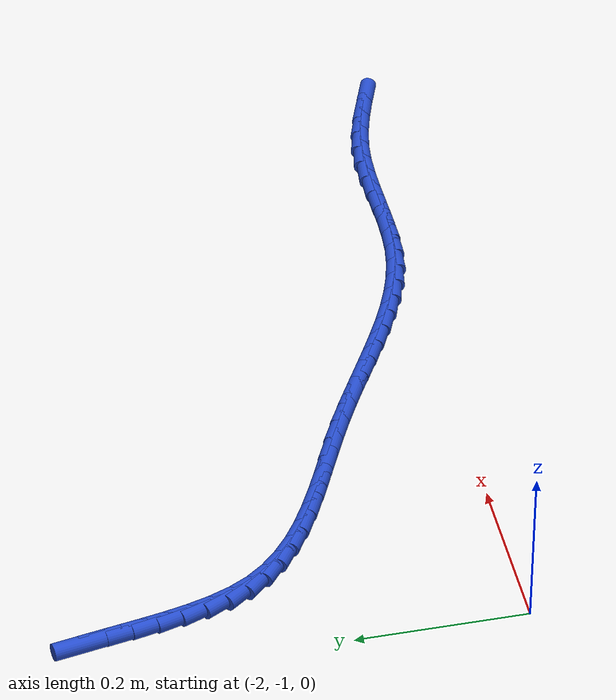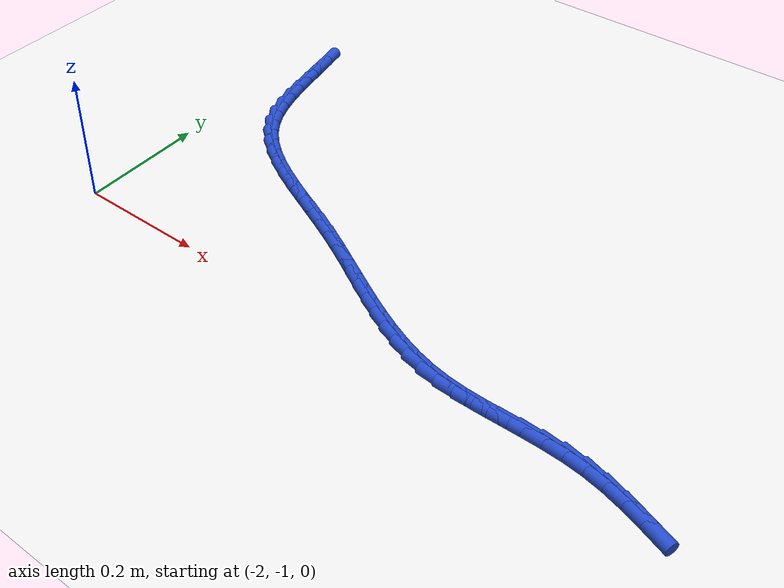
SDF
<sdf version="1.6">
 <world name="default">
  <model name="ground_plane">
   <static>1</static>
   <link name="link">
    <collision name="collision">
     <geometry><plane><normal>0 0 1</normal><size>100 100</size></plane></geometry>
     <surface><friction><ode><mu>100</mu><mu2>50</mu2></ode></friction></surface>
    </collision>
    <visual name="visual">
     <cast_shadows>0</cast_shadows>
     <geometry><plane><normal>0 0 1</normal><size>100 100</size></plane></geometry>
     <material>
      <script><uri>file://media/materials/scripts/gazebo.material</uri><name>Gazebo/WhiteGlow</name></script>
     </material>
    </visual>
   </link>
  </model>
  <model name="line">
   <link name="link_134">
    <pose>-1.9519739276661763 -0.5116068134276865 0.01 0 1.57 -1.393009282813356</pose>
    <collision name="collision">
     <geometry><cylinder><radius>0.01</radius><length>0.08</length></cylinder></geometry>
    </collision>
    <visual name="visual">
     <material>
      <script><name>Gazebo/Blue</name><uri>file://media/materials/scripts/gazebo.material</uri></script>
     </material>
     <geometry><cylinder><radius>0.01</radius><length>0.08</length></cylinder></geometry>
    </visual>
   </link>
   <link name="link_135">
    <pose>-1.9465908189441055 -0.5415655318789523 0.01 0 1.57 -1.39965586402072</pose>
    <collision name="collision">
     <geometry><cylinder><radius>0.01</radius><length>0.08</length></cylinder></geometry>
    </collision>
    <visual name="visual">
     <material>
      <script><name>Gazebo/Blue</name><uri>file://media/materials/scripts/gazebo.material</uri></script>
     </material>
     <geometry><cylinder><radius>0.01</radius><length>0.08</length></cylinder></geometry>
    </visual>
   </link>
   <link name="link_136">
    <pose>-1.9414377471796966 -0.5713811794061978 0.01 0 1.57 -1.3855193956344733</pose>
    <collision name="collision">
     <geometry><cylinder><radius>0.01</radius><length>0.08</length></cylinder></geometry>
    </collision>
    <visual name="visual">
     <material>
      <script><name>Gazebo/Blue</name><uri>file://media/materials/scripts/gazebo.material</uri></script>
     </material>
     <geometry><cylinder><radius>0.01</radius><length>0.08</length></cylinder></geometry>
    </visual>
   </link>
   <link name="link_137">
    <pose>-1.9359438019418214 -0.6006937134726278 0.01 0 1.57 -1.3493273520331157</pose>
    <collision name="collision">
     <geometry><cylinder><radius>0.01</radius><length>0.08</length></cylinder></geometry>
    </collision>
    <visual name="visual">
     <material>
      <script><name>Gazebo/Blue</name><uri>file://media/materials/scripts/gazebo.material</uri></script>
     </material>
     <geometry><cylinder><radius>0.01</radius><length>0.08</length></cylinder></geometry>
    </visual>
   </link>
   <link name="link_138">
    <pose>-1.9295380727993536 -0.6291430915414467 0.01 0 1.57 -1.2887817939440707</pose>
    <collision name="collision">
     <geometry><cylinder><radius>0.01</radius><length>0.08</length></cylinder></geometry>
    </collision>
    <visual name="visual">
     <material>
      <script><name>Gazebo/Blue</name><uri>file://media/materials/scripts/gazebo.material</uri></script>
     </material>
     <geometry><cylinder><radius>0.01</radius><length>0.08</length></cylinder></geometry>
    </visual>
   </link>
   <link name="link_139">
    <pose>-1.9216496493211666 -0.656369271075859 0.01 0 1.57 -1.200929311985274</pose>
    <collision name="collision">
     <geometry><cylinder><radius>0.01</radius><length>0.08</length></cylinder></geometry>
    </collision>
    <visual name="visual">
     <material>
      <script><name>Gazebo/Blue</name><uri>file://media/materials/scripts/gazebo.material</uri></script>
     </material>
     <geometry><cylinder><radius>0.01</radius><length>0.08</length></cylinder></geometry>
    </visual>
   </link>
   <link name="link_140">
    <pose>-1.9117076210761335 -0.6820122095390693 0.01 0 1.57 -1.0832491312086328</pose>
    <collision name="collision">
     <geometry><cylinder><radius>0.01</radius><length>0.08</length></cylinder></geometry>
    </collision>
    <visual name="visual">
     <material>
      <script><name>Gazebo/Blue</name><uri>file://media/materials/scripts/gazebo.material</uri></script>
     </material>
     <geometry><cylinder><radius>0.01</radius><length>0.08</length></cylinder></geometry>
    </visual>
   </link>
   <link name="link_141">
    <pose>-1.8991410776331281 -0.7057118643942808 0.01 0 1.57 -0.9388287081944348</pose>
    <collision name="collision">
     <geometry><cylinder><radius>0.01</radius><length>0.08</length></cylinder></geometry>
    </collision>
    <visual name="visual">
     <material>
      <script><name>Gazebo/Blue</name><uri>file://media/materials/scripts/gazebo.material</uri></script>
     </material>
     <geometry><cylinder><radius>0.01</radius><length>0.08</length></cylinder></geometry>
    </visual>
   </link>
   <link name="link_142">
    <pose>-1.8834434867054863 -0.7271527743234855 0.01 0 1.57 -0.7997073369297159</pose>
    <collision name="collision">
     <geometry><cylinder><radius>0.01</radius><length>0.08</length></cylinder></geometry>
    </collision>
    <visual name="visual">
     <material>
      <script><name>Gazebo/Blue</name><uri>file://media/materials/scripts/gazebo.material</uri></script>
     </material>
     <geometry><cylinder><radius>0.01</radius><length>0.08</length></cylinder></geometry>
    </visual>
   </link>
   <link name="link_143">
    <pose>-1.8647065523624886 -0.7464337506798324 0.01 0 1.57 -0.6848511977915867</pose>
    <collision name="collision">
     <geometry><cylinder><radius>0.01</radius><length>0.08</length></cylinder></geometry>
    </collision>
    <visual name="visual">
     <material>
      <script><name>Gazebo/Blue</name><uri>file://media/materials/scripts/gazebo.material</uri></script>
     </material>
     <geometry><cylinder><radius>0.01</radius><length>0.08</length></cylinder></geometry>
    </visual>
   </link>
   <link name="link_144">
    <pose>-1.8433468494268639 -0.7638785745520527 0.01 0 1.57 -0.594620615915329</pose>
    <collision name="collision">
     <geometry><cylinder><radius>0.01</radius><length>0.08</length></cylinder></geometry>
    </collision>
    <visual name="visual">
     <material>
      <script><name>Gazebo/Blue</name><uri>file://media/materials/scripts/gazebo.material</uri></script>
     </material>
     <geometry><cylinder><radius>0.01</radius><length>0.08</length></cylinder></geometry>
    </visual>
   </link>
   <link name="link_145">
    <pose>-1.8197841831278017 -0.7798132640529211 0.01 0 1.57 -0.5270585230086525</pose>
    <collision name="collision">
     <geometry><cylinder><radius>0.01</radius><length>0.08</length></cylinder></geometry>
    </collision>
    <visual name="visual">
     <material>
      <script><name>Gazebo/Blue</name><uri>file://media/materials/scripts/gazebo.material</uri></script>
     </material>
     <geometry><cylinder><radius>0.01</radius><length>0.08</length></cylinder></geometry>
    </visual>
   </link>
   <link name="link_146">
    <pose>-1.7944383586944903 -0.7945638372952138 0.01 0 1.57 -0.4796284144301921</pose>
    <collision name="collision">
     <geometry><cylinder><radius>0.01</radius><length>0.08</length></cylinder></geometry>
    </collision>
    <visual name="visual">
     <material>
      <script><name>Gazebo/Blue</name><uri>file://media/materials/scripts/gazebo.material</uri></script>
     </material>
     <geometry><cylinder><radius>0.01</radius><length>0.08</length></cylinder></geometry>
    </visual>
   </link>
   <link name="link_147">
    <pose>-1.7677291813561191 -0.8084563123917072 0.01 0 1.57 -0.4500764125554859</pose>
    <collision name="collision">
     <geometry><cylinder><radius>0.01</radius><length>0.08</length></cylinder></geometry>
    </collision>
    <visual name="visual">
     <material>
      <script><name>Gazebo/Blue</name><uri>file://media/materials/scripts/gazebo.material</uri></script>
     </material>
     <geometry><cylinder><radius>0.01</radius><length>0.08</length></cylinder></geometry>
    </visual>
   </link>
   <link name="link_148">
    <pose>-1.7400764563418762 -0.8218167074551774 0.01 0 1.57 -0.4367820474878849</pose>
    <collision name="collision">
     <geometry><cylinder><radius>0.01</radius><length>0.08</length></cylinder></geometry>
    </collision>
    <visual name="visual">
     <material>
      <script><name>Gazebo/Blue</name><uri>file://media/materials/scripts/gazebo.material</uri></script>
     </material>
     <geometry><cylinder><radius>0.01</radius><length>0.08</length></cylinder></geometry>
    </visual>
   </link>
   <link name="link_149">
    <pose>-1.7118999888809516 -0.8349710405983994 0.01 0 1.57 -0.4388538998564403</pose>
    <collision name="collision">
     <geometry><cylinder><radius>0.01</radius><length>0.08</length></cylinder></geometry>
    </collision>
    <visual name="visual">
     <material>
      <script><name>Gazebo/Blue</name><uri>file://media/materials/scripts/gazebo.material</uri></script>
     </material>
     <geometry><cylinder><radius>0.01</radius><length>0.08</length></cylinder></geometry>
    </visual>
   </link>
   <link name="link_150">
    <pose>-1.6836195842025343 -0.84824532993415 0.01 0 1.57 -0.45612232388769</pose>
    <collision name="collision">
     <geometry><cylinder><radius>0.01</radius><length>0.08</length></cylinder></geometry>
    </collision>
    <visual name="visual">
     <material>
      <script><name>Gazebo/Blue</name><uri>file://media/materials/scripts/gazebo.material</uri></script>
     </material>
     <geometry><cylinder><radius>0.01</radius><length>0.08</length></cylinder></geometry>
    </visual>
   </link>
   <link name="link_151">
    <pose>-1.6556550076881567 -0.8619655475582516 0.01 0 1.57 -0.48361010258796455</pose>
    <collision name="collision">
     <geometry><cylinder><radius>0.01</radius><length>0.08</length></cylinder></geometry>
    </collision>
    <visual name="visual">
     <material>
      <script><name>Gazebo/Blue</name><uri>file://media/materials/scripts/gazebo.material</uri></script>
     </material>
     <geometry><cylinder><radius>0.01</radius><length>0.08</length></cylinder></geometry>
    </visual>
   </link>
   <link name="link_152">
    <pose>-1.628312195619422 -0.8763262132105408 0.01 0 1.57 -0.5042226583366032</pose>
    <collision name="collision">
     <geometry><cylinder><radius>0.01</radius><length>0.08</length></cylinder></geometry>
    </collision>
    <visual name="visual">
     <material>
      <script><name>Gazebo/Blue</name><uri>file://media/materials/scripts/gazebo.material</uri></script>
     </material>
     <geometry><cylinder><radius>0.01</radius><length>0.08</length></cylinder></geometry>
    </visual>
   </link>
   <link name="link_153">
    <pose>-1.6015338955015643 -0.8911024282189391 0.01 0 1.57 -0.5142698997428276</pose>
    <collision name="collision">
     <geometry><cylinder><radius>0.01</radius><length>0.08</length></cylinder></geometry>
    </collision>
    <visual name="visual">
     <material>
      <script><name>Gazebo/Blue</name><uri>file://media/materials/scripts/gazebo.material</uri></script>
     </material>
     <geometry><cylinder><radius>0.01</radius><length>0.08</length></cylinder></geometry>
    </visual>
   </link>
   <link name="link_154">
    <pose>-1.5751905764019163 -0.9059858251766117 0.01 0 1.57 -0.5134365073346598</pose>
    <collision name="collision">
     <geometry><cylinder><radius>0.01</radius><length>0.08</length></cylinder></geometry>
    </collision>
    <visual name="visual">
     <material>
      <script><name>Gazebo/Blue</name><uri>file://media/materials/scripts/gazebo.material</uri></script>
     </material>
     <geometry><cylinder><radius>0.01</radius><length>0.08</length></cylinder></geometry>
    </visual>
   </link>
   <link name="link_155">
    <pose>-1.549152707387808 -0.9206680366767249 0.01 0 1.57 -0.5013156272980686</pose>
    <collision name="collision">
     <geometry><cylinder><radius>0.01</radius><length>0.08</length></cylinder></geometry>
    </collision>
    <visual name="visual">
     <material>
      <script><name>Gazebo/Blue</name><uri>file://media/materials/scripts/gazebo.material</uri></script>
     </material>
     <geometry><cylinder><radius>0.01</radius><length>0.08</length></cylinder></geometry>
    </visual>
   </link>
   <link name="link_156">
    <pose>-1.5232907575265706 -0.934840695312444 0.01 0 1.57 -0.4774022733399042</pose>
    <collision name="collision">
     <geometry><cylinder><radius>0.01</radius><length>0.08</length></cylinder></geometry>
    </collision>
    <visual name="visual">
     <material>
      <script><name>Gazebo/Blue</name><uri>file://media/materials/scripts/gazebo.material</uri></script>
     </material>
     <geometry><cylinder><radius>0.01</radius><length>0.08</length></cylinder></geometry>
    </visual>
   </link>
   <link name="link_157">
    <pose>-1.4974751958855352 -0.9481954336769354 0.01 0 1.57 -0.44113234170856447</pose>
    <collision name="collision">
     <geometry><cylinder><radius>0.01</radius><length>0.08</length></cylinder></geometry>
    </collision>
    <visual name="visual">
     <material>
      <script><name>Gazebo/Blue</name><uri>file://media/materials/scripts/gazebo.material</uri></script>
     </material>
     <geometry><cylinder><radius>0.01</radius><length>0.08</length></cylinder></geometry>
    </visual>
   </link>
   <link name="link_158">
    <pose>-1.471576491532034 -0.9604238843633639 0.01 0 1.57 -0.3919832662232081</pose>
    <collision name="collision">
     <geometry><cylinder><radius>0.01</radius><length>0.08</length></cylinder></geometry>
    </collision>
    <visual name="visual">
     <material>
      <script><name>Gazebo/Blue</name><uri>file://media/materials/scripts/gazebo.material</uri></script>
     </material>
     <geometry><cylinder><radius>0.01</radius><length>0.08</length></cylinder></geometry>
    </visual>
   </link>
   <link name="link_159">
    <pose>-1.445465113533397 -0.9712176799648958 0.01 0 1.57 -0.3296536217675608</pose>
    <collision name="collision">
     <geometry><cylinder><radius>0.01</radius><length>0.08</length></cylinder></geometry>
    </collision>
    <visual name="visual">
     <material>
      <script><name>Gazebo/Blue</name><uri>file://media/materials/scripts/gazebo.material</uri></script>
     </material>
     <geometry><cylinder><radius>0.01</radius><length>0.08</length></cylinder></geometry>
    </visual>
   </link>
   <link name="link_160">
    <pose>-1.419011530956956 -0.9802684530746966 0.01 0 1.57 -0.25432633008640737</pose>
    <collision name="collision">
     <geometry><cylinder><radius>0.01</radius><length>0.08</length></cylinder></geometry>
    </collision>
    <visual name="visual">
     <material>
      <script><name>Gazebo/Blue</name><uri>file://media/materials/scripts/gazebo.material</uri></script>
     </material>
     <geometry><cylinder><radius>0.01</radius><length>0.08</length></cylinder></geometry>
    </visual>
   </link>
   <link name="link_161">
    <pose>-1.3920862128700415 -0.9872678362859323 0.01 0 1.57 -0.1671069106717336</pose>
    <collision name="collision">
     <geometry><cylinder><radius>0.01</radius><length>0.08</length></cylinder></geometry>
    </collision>
    <visual name="visual">
     <material>
      <script><name>Gazebo/Blue</name><uri>file://media/materials/scripts/gazebo.material</uri></script>
     </material>
     <geometry><cylinder><radius>0.01</radius><length>0.08</length></cylinder></geometry>
    </visual>
   </link>
   <link name="link_162">
    <pose>-1.3645605002536092 -0.9919108722499509 0.01 0 1.57 -0.08221717956017614</pose>
    <collision name="collision">
     <geometry><cylinder><radius>0.01</radius><length>0.08</length></cylinder></geometry>
    </collision>
    <visual name="visual">
     <material>
      <script><name>Gazebo/Blue</name><uri>file://media/materials/scripts/gazebo.material</uri></script>
     </material>
     <geometry><cylinder><radius>0.01</radius><length>0.08</length></cylinder></geometry>
    </visual>
   </link>
   <link name="link_163">
    <pose>-1.3363925131863874 -0.9942319970673288 0.01 0 1.57 -0.02288278594774401</pose>
    <collision name="collision">
     <geometry><cylinder><radius>0.01</radius><length>0.08</length></cylinder></geometry>
    </collision>
    <visual name="visual">
     <material>
      <script><name>Gazebo/Blue</name><uri>file://media/materials/scripts/gazebo.material</uri></script>
     </material>
     <geometry><cylinder><radius>0.01</radius><length>0.08</length></cylinder></geometry>
    </visual>
   </link>
   <link name="link_164">
    <pose>-1.3076996752982362 -0.9948886837574672 0.01 0 1.57 0.009747278780281232</pose>
    <collision name="collision">
     <geometry><cylinder><radius>0.01</radius><length>0.08</length></cylinder></geometry>
    </collision>
    <visual name="visual">
     <material>
      <script><name>Gazebo/Blue</name><uri>file://media/materials/scripts/gazebo.material</uri></script>
     </material>
     <geometry><cylinder><radius>0.01</radius><length>0.08</length></cylinder></geometry>
    </visual>
   </link>
   <link name="link_165">
    <pose>-1.2786164870324683 -0.9946051928354596 0.01 0 1.57 0.017020319139708924</pose>
    <collision name="collision">
     <geometry><cylinder><radius>0.01</radius><length>0.08</length></cylinder></geometry>
    </collision>
    <visual name="visual">
     <material>
      <script><name>Gazebo/Blue</name><uri>file://media/materials/scripts/gazebo.material</uri></script>
     </material>
     <geometry><cylinder><radius>0.01</radius><length>0.08</length></cylinder></geometry>
    </visual>
   </link>
   <link name="link_166">
    <pose>-1.249277448832394 -0.9941057848163974 0.01 0 1.57 -0.00030330214236937907</pose>
    <collision name="collision">
     <geometry><cylinder><radius>0.01</radius><length>0.08</length></cylinder></geometry>
    </collision>
    <visual name="visual">
     <material>
      <script><name>Gazebo/Blue</name><uri>file://media/materials/scripts/gazebo.material</uri></script>
     </material>
     <geometry><cylinder><radius>0.01</radius><length>0.08</length></cylinder></geometry>
    </visual>
   </link>
   <link name="link_167">
    <pose>-1.2198170611413262 -0.9941147202153732 0.01 0 1.57 -0.04213653311413622</pose>
    <collision name="collision">
     <geometry><cylinder><radius>0.01</radius><length>0.08</length></cylinder></geometry>
    </collision>
    <visual name="visual">
     <material>
      <script><name>Gazebo/Blue</name><uri>file://media/materials/scripts/gazebo.material</uri></script>
     </material>
     <geometry><cylinder><radius>0.01</radius><length>0.08</length></cylinder></geometry>
    </visual>
   </link>
   <link name="link_168">
    <pose>-1.1903698244025753 -0.9953562595474792 0.01 0 1.57 -0.1087315525897662</pose>
    <collision name="collision">
     <geometry><cylinder><radius>0.01</radius><length>0.08</length></cylinder></geometry>
    </collision>
    <visual name="visual">
     <material>
      <script><name>Gazebo/Blue</name><uri>file://media/materials/scripts/gazebo.material</uri></script>
     </material>
     <geometry><cylinder><radius>0.01</radius><length>0.08</length></cylinder></geometry>
    </visual>
   </link>
   <link name="link_169">
    <pose>-1.1610702390594527 -0.9985546633278076 0.01 0 1.57 -0.19572260036290184</pose>
    <collision name="collision">
     <geometry><cylinder><radius>0.01</radius><length>0.08</length></cylinder></geometry>
    </collision>
    <visual name="visual">
     <material>
      <script><name>Gazebo/Blue</name><uri>file://media/materials/scripts/gazebo.material</uri></script>
     </material>
     <geometry><cylinder><radius>0.01</radius><length>0.08</length></cylinder></geometry>
    </visual>
   </link>
   <link name="link_170">
    <pose>-1.132039509278888 -1.004310316207196 0.01 0 1.57 -0.2717810325523538</pose>
    <collision name="collision">
     <geometry><cylinder><radius>0.01</radius><length>0.08</length></cylinder></geometry>
    </collision>
    <visual name="visual">
     <material>
      <script><name>Gazebo/Blue</name><uri>file://media/materials/scripts/gazebo.material</uri></script>
     </material>
     <geometry><cylinder><radius>0.01</radius><length>0.08</length></cylinder></geometry>
    </visual>
   </link>
   <link name="link_171">
    <pose>-1.1033017283637132 -1.0123188613980978 0.01 0 1.57 -0.3238932387742932</pose>
    <collision name="collision">
     <geometry><cylinder><radius>0.01</radius><length>0.08</length></cylinder></geometry>
    </collision>
    <visual name="visual">
     <material>
      <script><name>Gazebo/Blue</name><uri>file://media/materials/scripts/gazebo.material</uri></script>
     </material>
     <geometry><cylinder><radius>0.01</radius><length>0.08</length></cylinder></geometry>
    </visual>
   </link>
   <link name="link_172">
    <pose>-1.0748379128636898 -1.0218746139619312 0.01 0 1.57 -0.3530737325267229</pose>
    <collision name="collision">
     <geometry><cylinder><radius>0.01</radius><length>0.08</length></cylinder></geometry>
    </collision>
    <visual name="visual">
     <material>
      <script><name>Gazebo/Blue</name><uri>file://media/materials/scripts/gazebo.material</uri></script>
     </material>
     <geometry><cylinder><radius>0.01</radius><length>0.08</length></cylinder></geometry>
    </visual>
   </link>
  </model>
 </world>
</sdf>
